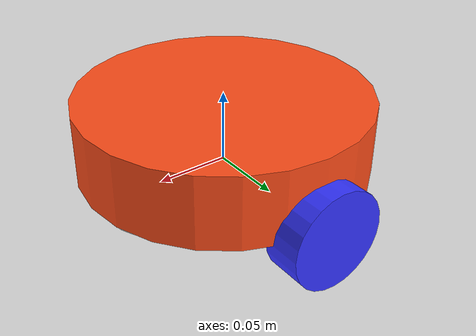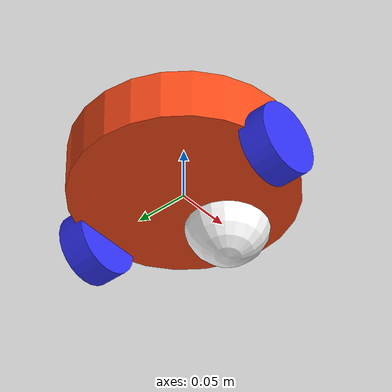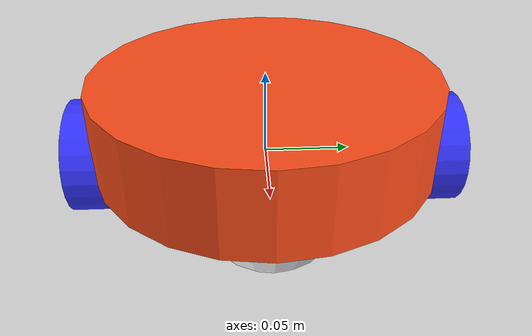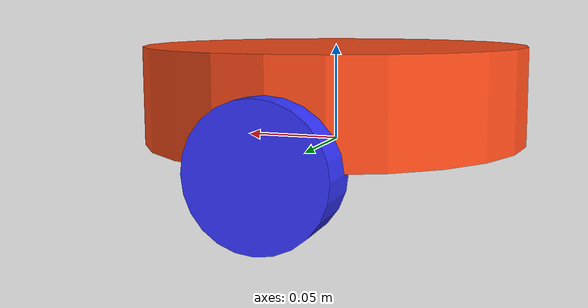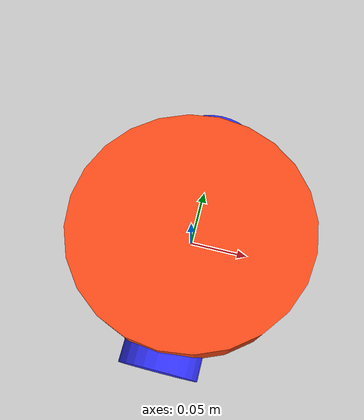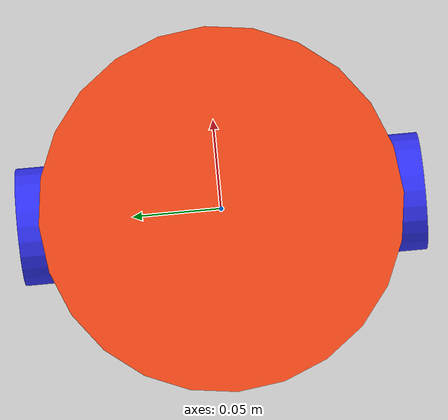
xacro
<?xml version="1.0"?>
<robot xmlns:xacro="http://www.ros.org/wiki/xacro" >

    <xacro:include filename="inertial_macros.xacro"/>

    <xacro:property name="chassis_radius" value="0.1"/>
    <xacro:property name="chassis_thickness" value="0.05"/>
    <xacro:property name="chassis_mass" value="10.0"/>
    <!-- Separator -->
    <xacro:property name="wheel_radius" value="0.033"/>
    <xacro:property name="wheel_thickness" value="0.026"/>
    <xacro:property name="wheel_mass" value="50.0"/>
    <xacro:property name="caster_wheel_radius" value="${wheel_radius+0.005}"/>
    <xacro:property name="caster_wheel_mass" value="50.0"/>
    <xacro:property name="caster_wheel_offset_x" value="${chassis_radius - caster_wheel_radius - 0.005}"/>
    <xacro:property name="caster_wheel_offset_z" value="${caster_wheel_radius/7}"/>

    <material name="white">
        <color rgba="1 1 1 1" />
    </material>

    <material name="orange">
        <color rgba="1 0.3 0.1 1"/>
    </material>

    <material name="blue">
        <color rgba="0.2 0.2 1 1"/>
    </material>

    <material name="black">
        <color rgba="0 0 0 1"/>
    </material>

    <material name="red">
        <color rgba="1 0 0 1"/>
    </material>

    <!-- BASE LINK -->

    <link name="base_link">
    </link>

    <!-- CHASSIS LINK -->

    <joint name="chassis_joint" type="fixed">
        <parent link="base_link"/>
        <child link="chassis"/>
        <origin xyz="0 0 0"/>
    </joint>

    <link name="chassis">
        <visual>
            <origin xyz="0 0 ${chassis_radius/4}"/>
            <geometry>
                <cylinder radius="${chassis_radius}" length="${chassis_thickness}"/>
            </geometry>
            <material name="orange"/>
        </visual>
        <collision>
            <origin xyz="0 0 ${chassis_radius/2}"/>
            <geometry>
                <cylinder radius="${chassis_radius}" length="${chassis_thickness}"/>
            </geometry>
        </collision>
        <xacro:inertial_cylinder mass="${chassis_mass}" length="${chassis_thickness}" radius="${chassis_radius}">
            <origin xyz="0 0 0" rpy="0 0 0"/>
        </xacro:inertial_cylinder>
    </link>

    <gazebo reference="chassis">
        <material>Gazebo/Orange</material>
    </gazebo>

    <!-- LEFT WHEEL LINK -->

    <joint name="left_wheel_joint" type="continuous">
        <parent link="chassis"/>
        <child link="left_wheel"/>
        <origin xyz="0 ${chassis_radius} 0" rpy="-${pi/2} 0 0" />
        <axis xyz="0 0 1"/>
    </joint>

    <link name="left_wheel">
        <visual>
            <geometry>
                <cylinder radius="${wheel_radius}" length="${wheel_thickness}"/>
            </geometry>
            <material name="blue"/>
        </visual>
        <collision>
            <geometry>
                <sphere radius="${wheel_radius}"/>
            </geometry>
        </collision>
        <xacro:inertial_cylinder mass="${wheel_mass}" length="${wheel_thickness}" radius="${wheel_radius}">
            <origin xyz="0 0 0" rpy="0 0 0"/>
        </xacro:inertial_cylinder>
    </link>

    <gazebo reference="left_wheel">
        <material>Gazebo/Blue</material>
    </gazebo>

    <!-- RIGHT WHEEL LINK -->

    <joint name="right_wheel_joint" type="continuous">
        <parent link="chassis"/>
        <child link="right_wheel"/>
        <origin xyz="0 ${-chassis_radius} 0" rpy="${pi/2} 0 0" />
        <axis xyz="0 0 -1"/>
    </joint>

    <link name="right_wheel">
        <visual>
            <geometry>
                <cylinder radius="${wheel_radius}" length="${wheel_thickness}"/>
            </geometry>
            <material name="blue"/>
        </visual>
        <collision>
            <geometry>
                <sphere radius="${wheel_radius}"/>
            </geometry>
        </collision>
        <xacro:inertial_cylinder mass="${wheel_mass}" length="${wheel_thickness}" radius="${wheel_radius}">
            <origin xyz="0 0 0" rpy="0 0 0"/>
        </xacro:inertial_cylinder>
    </link>

    <gazebo reference="right_wheel">
        <material>Gazebo/Blue</material>
    </gazebo>

    <!-- CASTER WHEEL LINK -->

    <joint name="caster_wheel_joint" type="fixed">
        <parent link="chassis"/>
        <child link="caster_wheel"/>
        <origin xyz="${caster_wheel_offset_x} 0 ${caster_wheel_offset_z}"/>
    </joint>

    <link name="caster_wheel">
        <visual>
            <geometry>
                <sphere radius="${caster_wheel_radius}"/>
            </geometry>
            <material name="white"/>
        </visual>
        <collision>
            <geometry>
                <sphere radius="${caster_wheel_radius}"/>
            </geometry>
        </collision>
        <xacro:inertial_sphere mass="${caster_wheel_mass}" radius="${caster_wheel_radius}">
            <origin xyz="0 0 0" rpy="0 0 0"/>
        </xacro:inertial_sphere>
    </link>

    <gazebo reference="caster_wheel">
        <material>Gazebo/White</material>
        <mu1 value="0.001"/>
        <mu2 value="0.001"/>
    </gazebo>

</robot>
